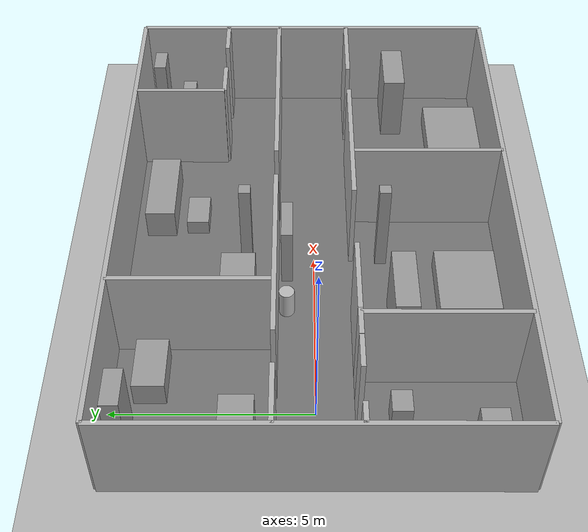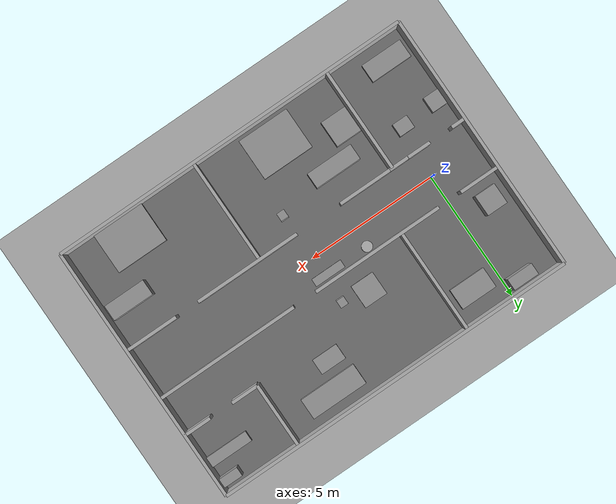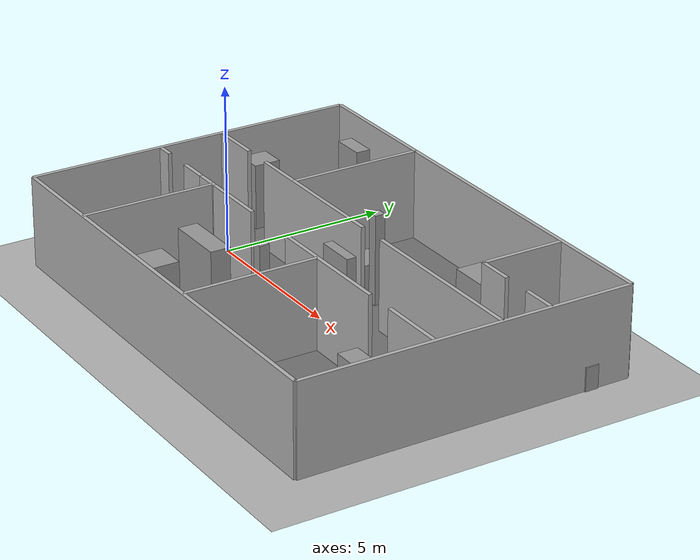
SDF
<?xml version="1.0"?>
<sdf version="1.10">
  <world name="world_test_house">
    <gravity>0 0 -9.8</gravity>
    <physics name="fast_physics" type="ode">
      <max_step_size>0.001</max_step_size>
      <real_time_update_rate>2000</real_time_update_rate>
      <real_time_factor>2.0</real_time_factor>
    </physics>

    <plugin filename="gz-sim-physics-system" name="gz::sim::systems::Physics"/>
    <plugin filename="gz-sim-user-commands-system" name="gz::sim::systems::UserCommands"/>
    <plugin filename="gz-sim-scene-broadcaster-system" name="gz::sim::systems::SceneBroadcaster"/>
    <plugin filename="gz-sim-sensors-system" name="gz::sim::systems::Sensors">
      <render_engine>ogre2</render_engine>
    </plugin>

      <!-- Sun light (replaces model://sun) -->
  <light name="sun" type="directional">
    <cast_shadows>true</cast_shadows>
    <pose>0 0 10 0 0 0</pose>
    <diffuse>0.8 0.8 0.8 1</diffuse>
    <specular>0.2 0.2 0.2 1</specular>
    <attenuation>
      <range>1000</range>
      <constant>0.9</constant>
      <linear>0.01</linear>
      <quadratic>0.001</quadratic>
    </attenuation>
    <direction>-0.5 0.1 -1</direction>
  </light>

  <!-- Ground plane (replaces model://ground_plane) -->
  <model name="ground_plane">
    <static>true</static>
    <link name="link">
      <collision name="collision">
        <geometry>
          <plane>
            <normal>0 0 1</normal>
            <size>100 100</size>
          </plane>
        </geometry>
        <surface>
          <friction>
            <ode>
              <mu>1.0</mu>
              <mu2>1.0</mu2>
            </ode>
          </friction>
        </surface>
      </collision>

      <visual name="visual">
        <geometry>
          <plane>
            <normal>0 0 1</normal>
            <size>100 100</size>
          </plane>
        </geometry>
        <material>
          <ambient>0.7 0.7 0.7 1</ambient>
          <diffuse>0.7 0.7 0.7 1</diffuse>
        </material>
      </visual>
    </link>
  </model>

    <model name="house_floor">
      <static>true</static>
      <pose>5.0000 0.0000 0.0100 0.0000 0.0000 0.0000</pose>
      <link name="link">
        <visual name="vis">
          <geometry><box><size>14.0000 10.0000 0.0200</size></box></geometry>
          <material>
            <ambient>0.45 0.45 0.45 1</ambient>
            <diffuse>0.45 0.45 0.45 1</diffuse>
          </material>
        </visual>
      </link>
    </model>

    <model name="wall_north">
      <static>true</static>
      <pose>5.0000 5.0000 1.3500 0.0000 0.0000 0.0000</pose>
      <link name="link">
        <collision name="col">
          <geometry><box><size>14.0000 0.1200 2.7000</size></box></geometry>
        </collision>
        <visual name="vis">
          <geometry><box><size>14.0000 0.1200 2.7000</size></box></geometry>
          <material>
            <ambient>0.7 0.7 0.7 1.0</ambient>
            <diffuse>0.7 0.7 0.7 1.0</diffuse>
          </material>
        </visual>
      </link>
    </model>

    <model name="wall_south">
      <static>true</static>
      <pose>5.0000 -5.0000 1.3500 0.0000 0.0000 0.0000</pose>
      <link name="link">
        <collision name="col">
          <geometry><box><size>14.0000 0.1200 2.7000</size></box></geometry>
        </collision>
        <visual name="vis">
          <geometry><box><size>14.0000 0.1200 2.7000</size></box></geometry>
          <material>
            <ambient>0.7 0.7 0.7 1.0</ambient>
            <diffuse>0.7 0.7 0.7 1.0</diffuse>
          </material>
        </visual>
      </link>
    </model>

    <model name="wall_west_1">
      <static>true</static>
      <pose>-2.0000 0 1.3500 0.0000 0.0000 0.0000</pose>
      <link name="link">
        <collision name="col">
          <geometry><box><size>0.1200 10.0000 2.7000</size></box></geometry>
        </collision>
        <visual name="vis">
          <geometry><box><size>0.1200 10.0000 2.7000</size></box></geometry>
          <material>
            <ambient>0.7 0.7 0.7 1.0</ambient>
            <diffuse>0.7 0.7 0.7 1.0</diffuse>
          </material>
        </visual>
      </link>
    </model>

    <model name="wall_east">
      <static>true</static>
      <pose>12.0000 0.0000 1.3500 0.0000 0.0000 0.0000</pose>
      <link name="link">
        <collision name="col">
          <geometry><box><size>0.1200 10.0000 2.7000</size></box></geometry>
        </collision>
        <visual name="vis">
          <geometry><box><size>0.1200 10.0000 2.7000</size></box></geometry>
          <material>
            <ambient>0.7 0.7 0.7 1.0</ambient>
            <diffuse>0.7 0.7 0.7 1.0</diffuse>
          </material>
        </visual>
      </link>
    </model>

    <model name="wall_y1_a">
      <static>true</static>
      <pose>-1.2250 1.0000 1.3500 0.0000 0.0000 0.0000</pose>
      <link name="link">
        <collision name="col">
          <geometry><box><size>1.5500 0.1200 2.7000</size></box></geometry>
        </collision>
        <visual name="vis">
          <geometry><box><size>1.5500 0.1200 2.7000</size></box></geometry>
          <material>
            <ambient>0.7 0.7 0.7 1.0</ambient>
            <diffuse>0.7 0.7 0.7 1.0</diffuse>
          </material>
        </visual>
      </link>
    </model>

    <model name="wall_y1_b">
      <static>true</static>
      <pose>3.0000 1.0000 1.3500 0.0000 0.0000 0.0000</pose>
      <link name="link">
        <collision name="col">
          <geometry><box><size>5.1000 0.1200 2.7000</size></box></geometry>
        </collision>
        <visual name="vis">
          <geometry><box><size>5.1000 0.1200 2.7000</size></box></geometry>
          <material>
            <ambient>0.7 0.7 0.7 1.0</ambient>
            <diffuse>0.7 0.7 0.7 1.0</diffuse>
          </material>
        </visual>
      </link>
    </model>

    <model name="wall_y1_c">
      <static>true</static>
      <pose>9.2250 1.0000 1.3500 0.0000 0.0000 0.0000</pose>
      <link name="link">
        <collision name="col">
          <geometry><box><size>5.5500 0.1200 2.7000</size></box></geometry>
        </collision>
        <visual name="vis">
          <geometry><box><size>5.5500 0.1200 2.7000</size></box></geometry>
          <material>
            <ambient>0.7 0.7 0.7 1.0</ambient>
            <diffuse>0.7 0.7 0.7 1.0</diffuse>
          </material>
        </visual>
      </link>
    </model>

    <model name="wall_y-1_r_a">
      <static>true</static>
      <pose>2.1300 -1.0000 1.3500 0.0000 0.0000 0.0000</pose>
      <link name="link">
        <collision name="col">
          <geometry><box><size>2.0500 0.1200 2.7000</size></box></geometry>
        </collision>
        <visual name="vis">
          <geometry><box><size>2.0500 0.1200 2.7000</size></box></geometry>
          <material>
            <ambient>0.7 0.7 0.7 1.0</ambient>
            <diffuse>0.7 0.7 0.7 1.0</diffuse>
          </material>
        </visual>
      </link>
    </model>

    <model name="wall_y-1_r_b">
      <static>true</static>
      <pose>7.0000 -1.0000 1.3500 0.0000 0.0000 0.0000</pose>
      <link name="link">
        <collision name="col">
          <geometry><box><size>4.1000 0.1200 2.7000</size></box></geometry>
        </collision>
        <visual name="vis">
          <geometry><box><size>4.1000 0.1200 2.7000</size></box></geometry>
          <material>
            <ambient>0.7 0.7 0.7 1.0</ambient>
            <diffuse>0.7 0.7 0.7 1.0</diffuse>
          </material>
        </visual>
      </link>
    </model>

    <model name="wall_y-1_r_c">
      <static>true</static>
      <pose>10.9750 -1.0000 1.3500 0.0000 0.0000 0.0000</pose>
      <link name="link">
        <collision name="col">
          <geometry><box><size>2.0500 0.1200 2.7000</size></box></geometry>
        </collision>
        <visual name="vis">
          <geometry><box><size>2.0500 0.1200 2.7000</size></box></geometry>
          <material>
            <ambient>0.7 0.7 0.7 1.0</ambient>
            <diffuse>0.7 0.7 0.7 1.0</diffuse>
          </material>
        </visual>
      </link>
    </model>

    <model name="wall_y-1_l_a">
      <static>true</static>
      <pose>-1.7250 -1.0000 1.3500 0.0000 0.0000 0.0000</pose>
      <link name="link">
        <collision name="col">
          <geometry><box><size>0.5500 0.1200 2.7000</size></box></geometry>
        </collision>
        <visual name="vis">
          <geometry><box><size>0.5500 0.1200 2.7000</size></box></geometry>
          <material>
            <ambient>0.7 0.7 0.7 1.0</ambient>
            <diffuse>0.7 0.7 0.7 1.0</diffuse>
          </material>
        </visual>
      </link>
    </model>

    <model name="wall_y-1_l_b">
      <static>true</static>
      <pose>-0.1000 -1.0000 1.3500 0.0000 0.0000 0.0000</pose>
      <link name="link">
        <collision name="col">
          <geometry><box><size>0.9000 0.1200 2.7000</size></box></geometry>
        </collision>
        <visual name="vis">
          <geometry><box><size>0.9000 0.1200 2.7000</size></box></geometry>
          <material>
            <ambient>0.7 0.7 0.7 1.0</ambient>
            <diffuse>0.7 0.7 0.7 1.0</diffuse>
          </material>
        </visual>
      </link>
    </model>

    <model name="wall_y-1_l_c">
      <static>true</static>
      <pose>0.7300 -1.0000 1.3500 0.0000 0.0000 0.0000</pose>
      <link name="link">
        <collision name="col">
          <geometry><box><size>0.7500 0.1200 2.7000</size></box></geometry>
        </collision>
        <visual name="vis">
          <geometry><box><size>0.7500 0.1200 2.7000</size></box></geometry>
          <material>
            <ambient>0.7 0.7 0.7 1.0</ambient>
            <diffuse>0.7 0.7 0.7 1.0</diffuse>
          </material>
        </visual>
      </link>
    </model>

    <model name="wall_x2">
      <static>true</static>
      <pose>2.0000 3.0000 1.3500 0.0000 0.0000 0.0000</pose>
      <link name="link">
        <collision name="col">
          <geometry><box><size>0.1200 4.0000 2.7000</size></box></geometry>
        </collision>
        <visual name="vis">
          <geometry><box><size>0.1200 4.0000 2.7000</size></box></geometry>
          <material>
            <ambient>0.7 0.7 0.7 1.0</ambient>
            <diffuse>0.7 0.7 0.7 1.0</diffuse>
          </material>
        </visual>
      </link>
    </model>

    <model name="wall_x6p5">
      <static>true</static>
      <pose>6.5000 -3.0000 1.3500 0.0000 0.0000 0.0000</pose>
      <link name="link">
        <collision name="col">
          <geometry><box><size>0.1200 4.0000 2.7000</size></box></geometry>
        </collision>
        <visual name="vis">
          <geometry><box><size>0.1200 4.0000 2.7000</size></box></geometry>
          <material>
            <ambient>0.7 0.7 0.7 1.0</ambient>
            <diffuse>0.7 0.7 0.7 1.0</diffuse>
          </material>
        </visual>
      </link>
    </model>

    <model name="wall_x1">
      <static>true</static>
      <pose>1.0000 -3.0000 1.3500 0.0000 0.0000 0.0000</pose>
      <link name="link">
        <collision name="col">
          <geometry><box><size>0.1200 4.0000 2.7000</size></box></geometry>
        </collision>
        <visual name="vis">
          <geometry><box><size>0.1200 4.0000 2.7000</size></box></geometry>
          <material>
            <ambient>0.7 0.7 0.7 1.0</ambient>
            <diffuse>0.7 0.7 0.7 1.0</diffuse>
          </material>
        </visual>
      </link>
    </model>

    <model name="study_wall_v">
      <static>true</static>
      <pose>9.0000 3.7500 1.3500 0.0000 0.0000 0.0000</pose>
      <link name="link">
        <collision name="col">
          <geometry><box><size>0.1200 2.5000 2.7000</size></box></geometry>
        </collision>
        <visual name="vis">
          <geometry><box><size>0.1200 2.5000 2.7000</size></box></geometry>
          <material>
            <ambient>0.7 0.7 0.7 1.0</ambient>
            <diffuse>0.7 0.7 0.7 1.0</diffuse>
          </material>
        </visual>
      </link>
    </model>

    <model name="study_wall_h_a">
      <static>true</static>
      <pose>9.5250 2.5000 1.3500 0.0000 0.0000 0.0000</pose>
      <link name="link">
        <collision name="col">
          <geometry><box><size>1.0500 0.1200 2.7000</size></box></geometry>
        </collision>
        <visual name="vis">
          <geometry><box><size>1.0500 0.1200 2.7000</size></box></geometry>
          <material>
            <ambient>0.7 0.7 0.7 1.0</ambient>
            <diffuse>0.7 0.7 0.7 1.0</diffuse>
          </material>
        </visual>
      </link>
    </model>

    <model name="study_wall_h_b">
      <static>true</static>
      <pose>11.4750 2.5000 1.3500 0.0000 0.0000 0.0000</pose>
      <link name="link">
        <collision name="col">
          <geometry><box><size>1.0500 0.1200 2.7000</size></box></geometry>
        </collision>
        <visual name="vis">
          <geometry><box><size>1.0500 0.1200 2.7000</size></box></geometry>
          <material>
            <ambient>0.7 0.7 0.7 1.0</ambient>
            <diffuse>0.7 0.7 0.7 1.0</diffuse>
          </material>
        </visual>
      </link>
    </model>

    <model name="sofa">
      <static>true</static>
      <pose>7.0000 4.2000 0.4500 0.0000 0.0000 0.0000</pose>
      <link name="link">
        <collision name="col">
          <geometry><box><size>2.2000 0.8000 0.9000</size></box></geometry>
        </collision>
        <visual name="vis">
          <geometry><box><size>2.2000 0.8000 0.9000</size></box></geometry>
          <material>
            <ambient>0.6 0.6 0.6 1</ambient>
            <diffuse>0.6 0.6 0.6 1</diffuse>
          </material>
        </visual>
      </link>
    </model>

    <model name="coffee_table">
      <static>true</static>
      <pose>6.5000 3.2000 0.2250 0.0000 0.0000 0.0000</pose>
      <link name="link">
        <collision name="col">
          <geometry><box><size>1.0000 0.6000 0.4500</size></box></geometry>
        </collision>
        <visual name="vis">
          <geometry><box><size>1.0000 0.6000 0.4500</size></box></geometry>
          <material>
            <ambient>0.6 0.6 0.6 1</ambient>
            <diffuse>0.6 0.6 0.6 1</diffuse>
          </material>
        </visual>
      </link>
    </model>

    <model name="tv_stand">
      <static>true</static>
      <pose>11.2000 3.8000 0.3500 0.0000 0.0000 0.0000</pose>
      <link name="link">
        <collision name="col">
          <geometry><box><size>1.8000 0.4000 0.7000</size></box></geometry>
        </collision>
        <visual name="vis">
          <geometry><box><size>1.8000 0.4000 0.7000</size></box></geometry>
          <material>
            <ambient>0.6 0.6 0.6 1</ambient>
            <diffuse>0.6 0.6 0.6 1</diffuse>
          </material>
        </visual>
      </link>
    </model>

    <model name="armchair">
      <static>true</static>
      <pose>4.0000 2.0000 0.4500 0.0000 0.0000 0.0000</pose>
      <link name="link">
        <collision name="col">
          <geometry><box><size>0.9000 0.9000 0.9000</size></box></geometry>
        </collision>
        <visual name="vis">
          <geometry><box><size>0.9000 0.9000 0.9000</size></box></geometry>
          <material>
            <ambient>0.6 0.6 0.6 1</ambient>
            <diffuse>0.6 0.6 0.6 1</diffuse>
          </material>
        </visual>
      </link>
    </model>

    <model name="study_shelf">
      <static>true</static>
      <pose>11.6000 4.6000 0.9000 0.0000 0.0000 0.0000</pose>
      <link name="link">
        <collision name="col">
          <geometry><box><size>0.8000 0.3500 1.8000</size></box></geometry>
        </collision>
        <visual name="vis">
          <geometry><box><size>0.8000 0.3500 1.8000</size></box></geometry>
          <material>
            <ambient>0.6 0.6 0.6 1</ambient>
            <diffuse>0.6 0.6 0.6 1</diffuse>
          </material>
        </visual>
      </link>
    </model>

    <model name="dining_table">
      <static>true</static>
      <pose>1.0000 4.0000 0.3750 0.0000 0.0000 0.0000</pose>
      <link name="link">
        <collision name="col">
          <geometry><box><size>1.4000 0.8000 0.7500</size></box></geometry>
        </collision>
        <visual name="vis">
          <geometry><box><size>1.4000 0.8000 0.7500</size></box></geometry>
          <material>
            <ambient>0.6 0.6 0.6 1</ambient>
            <diffuse>0.6 0.6 0.6 1</diffuse>
          </material>
        </visual>
      </link>
    </model>

    <model name="fridge">
      <static>true</static>
      <pose>-1.2000 1.8000 1.0000 0.0000 0.0000 0.0000</pose>
      <link name="link">
        <collision name="col">
          <geometry><box><size>0.8000 0.8000 2.0000</size></box></geometry>
        </collision>
        <visual name="vis">
          <geometry><box><size>0.8000 0.8000 2.0000</size></box></geometry>
          <material>
            <ambient>0.6 0.6 0.6 1</ambient>
            <diffuse>0.6 0.6 0.6 1</diffuse>
          </material>
        </visual>
      </link>
    </model>

    <model name="kitchen_pantry">
      <static>true</static>
      <pose>-0.6000 4.6000 1.0000 0.0000 0.0000 0.0000</pose>
      <link name="link">
        <collision name="col">
          <geometry><box><size>1.0000 0.4500 2.0000</size></box></geometry>
        </collision>
        <visual name="vis">
          <geometry><box><size>1.0000 0.4500 2.0000</size></box></geometry>
          <material>
            <ambient>0.6 0.6 0.6 1</ambient>
            <diffuse>0.6 0.6 0.6 1</diffuse>
          </material>
        </visual>
      </link>
    </model>

    <model name="bedroom1_bed">
      <static>true</static>
      <pose>3.8000 -4.0000 0.3000 0.0000 0.0000 0.0000</pose>
      <link name="link">
        <collision name="col">
          <geometry><box><size>2.0000 1.6000 0.6000</size></box></geometry>
        </collision>
        <visual name="vis">
          <geometry><box><size>2.0000 1.6000 0.6000</size></box></geometry>
          <material>
            <ambient>0.6 0.6 0.6 1</ambient>
            <diffuse>0.6 0.6 0.6 1</diffuse>
          </material>
        </visual>
      </link>
    </model>

    <model name="bedroom1_wardrobe">
      <static>true</static>
      <pose>2.6000 -2.2000 1.0000 0.0000 0.0000 0.0000</pose>
      <link name="link">
        <collision name="col">
          <geometry><box><size>1.8000 0.6000 2.0000</size></box></geometry>
        </collision>
        <visual name="vis">
          <geometry><box><size>1.8000 0.6000 2.0000</size></box></geometry>
          <material>
            <ambient>0.6 0.6 0.6 1</ambient>
            <diffuse>0.6 0.6 0.6 1</diffuse>
          </material>
        </visual>
      </link>
    </model>

    <model name="bedroom2_bed">
      <static>true</static>
      <pose>9.8000 -4.2000 0.3000 0.0000 0.0000 0.0000</pose>
      <link name="link">
        <collision name="col">
          <geometry><box><size>2.0000 1.6000 0.6000</size></box></geometry>
        </collision>
        <visual name="vis">
          <geometry><box><size>2.0000 1.6000 0.6000</size></box></geometry>
          <material>
            <ambient>0.6 0.6 0.6 1</ambient>
            <diffuse>0.6 0.6 0.6 1</diffuse>
          </material>
        </visual>
      </link>
    </model>

    <model name="bedroom2_wardrobe">
      <static>true</static>
      <pose>11.0000 -2.4000 1.0000 0.0000 0.0000 0.0000</pose>
      <link name="link">
        <collision name="col">
          <geometry><box><size>1.6000 0.6000 2.0000</size></box></geometry>
        </collision>
        <visual name="vis">
          <geometry><box><size>1.6000 0.6000 2.0000</size></box></geometry>
          <material>
            <ambient>0.6 0.6 0.6 1</ambient>
            <diffuse>0.6 0.6 0.6 1</diffuse>
          </material>
        </visual>
      </link>
    </model>

    <model name="bathtub">
      <static>true</static>
      <pose>-1.0000 -4.2000 0.3000 0.0000 0.0000 0.0000</pose>
      <link name="link">
        <collision name="col">
          <geometry><box><size>1.6000 0.7000 0.6000</size></box></geometry>
        </collision>
        <visual name="vis">
          <geometry><box><size>1.6000 0.7000 0.6000</size></box></geometry>
          <material>
            <ambient>0.6 0.6 0.6 1</ambient>
            <diffuse>0.6 0.6 0.6 1</diffuse>
          </material>
        </visual>
      </link>
    </model>

    <model name="sink">
      <static>true</static>
      <pose>-0.2000 -2.0000 0.4500 0.0000 0.0000 0.0000</pose>
      <link name="link">
        <collision name="col">
          <geometry><box><size>0.6000 0.5000 0.9000</size></box></geometry>
        </collision>
        <visual name="vis">
          <geometry><box><size>0.6000 0.5000 0.9000</size></box></geometry>
          <material>
            <ambient>0.6 0.6 0.6 1</ambient>
            <diffuse>0.6 0.6 0.6 1</diffuse>
          </material>
        </visual>
      </link>
    </model>

    <model name="toilet">
      <static>true</static>
      <pose>-1.6000 -2.1000 0.4500 0.0000 0.0000 0.0000</pose>
      <link name="link">
        <collision name="col">
          <geometry><box><size>0.6000 0.6000 0.9000</size></box></geometry>
        </collision>
        <visual name="vis">
          <geometry><box><size>0.6000 0.6000 0.9000</size></box></geometry>
          <material>
            <ambient>0.6 0.6 0.6 1</ambient>
            <diffuse>0.6 0.6 0.6 1</diffuse>
          </material>
        </visual>
      </link>
    </model>

    <model name="storage_boxes">
      <static>true</static>
      <pose>1.6000 -3.2000 0.6000 0.0000 0.0000 0.0000</pose>
      <link name="link">
        <collision name="col">
          <geometry><box><size>1.0000 1.0000 1.2000</size></box></geometry>
        </collision>
        <visual name="vis">
          <geometry><box><size>1.0000 1.0000 1.2000</size></box></geometry>
          <material>
            <ambient>0.6 0.6 0.6 1</ambient>
            <diffuse>0.6 0.6 0.6 1</diffuse>
          </material>
        </visual>
      </link>
    </model>

    <model name="corridor_bookshelf">
      <static>true</static>
      <pose>4.8300 0.7200 0.9000 0.0000 0.0000 0.0000</pose>
      <link name="link">
        <collision name="col">
          <geometry><box><size>1.2000 0.3000 1.8000</size></box></geometry>
        </collision>
        <visual name="vis">
          <geometry><box><size>1.2000 0.3000 1.8000</size></box></geometry>
          <material>
            <ambient>0.6 0.6 0.6 1</ambient>
            <diffuse>0.6 0.6 0.6 1</diffuse>
          </material>
        </visual>
      </link>
    </model>

    <model name="plant_pot">
      <static>true</static>
      <pose>3.2000 0.7200 0.4000 0.0000 0.0000 0.0000</pose>
      <link name="link">
        <collision name="col">
          <geometry><cylinder><radius>0.2000</radius><length>0.8000</length></cylinder></geometry>
        </collision>
        <visual name="vis">
          <geometry><cylinder><radius>0.2000</radius><length>0.8000</length></cylinder></geometry>
        </visual>
      </link>
    </model>

    <model name="pillar_1">
      <static>true</static>
      <pose>5.0000 1.8000 1.3500 0.0000 0.0000 0.0000</pose>
      <link name="link">
        <collision name="col">
          <geometry><box><size>0.3000 0.3000 2.7000</size></box></geometry>
        </collision>
        <visual name="vis">
          <geometry><box><size>0.3000 0.3000 2.7000</size></box></geometry>
          <material>
            <ambient>0.6 0.6 0.6 1</ambient>
            <diffuse>0.6 0.6 0.6 1</diffuse>
          </material>
        </visual>
      </link>
    </model>

    <model name="pillar_2">
      <static>true</static>
      <pose>5.0000 -1.8000 1.3500 0.0000 0.0000 0.0000</pose>
      <link name="link">
        <collision name="col">
          <geometry><box><size>0.3000 0.3000 2.7000</size></box></geometry>
        </collision>
        <visual name="vis">
          <geometry><box><size>0.3000 0.3000 2.7000</size></box></geometry>
          <material>
            <ambient>0.6 0.6 0.6 1</ambient>
            <diffuse>0.6 0.6 0.6 1</diffuse>
          </material>
        </visual>
      </link>
    </model>
  </world>
</sdf>
